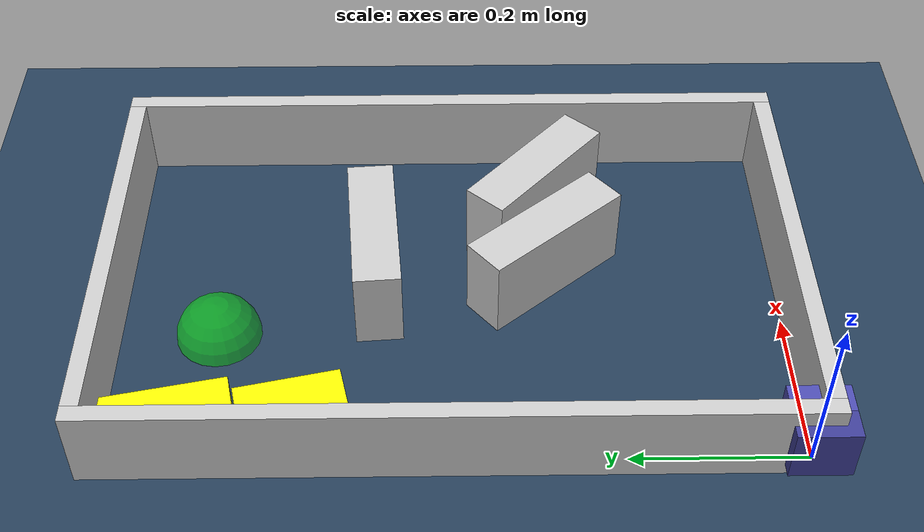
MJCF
<?xml version="1.0" ?>
<mujoco model="generated_environment">
  <option cone="elliptic" integrator="implicitfast" iterations="100" timestep="0.002"/>
  <default>
    <geom density="1"/>
  </default>
  <asset>
    <texture builtin="gradient" height="3072" rgb1="0.3 0.5 0.7" rgb2="0 0 0" type="skybox" width="512"/>
    <texture builtin="checker" height="300" mark="edge" markrgb="0.8 0.8 0.8" name="groundplane" rgb1="0.2 0.3 0.4" rgb2="0.1 0.2 0.3" type="2d" width="300"/>
    <material name="groundplane" reflectance="0.2" texrepeat="5 5" texture="groundplane" texuniform="true"/>
    <material name="robot" rgba="1.0 1.0 0.0 1.0"/>
  </asset>
  <include file="/home/dhruv/projects_dhruv/namo/namo_cpp/test_xml/little-car-modeling-package/assets/mjcf/little_car.xml"/>
  <worldbody>
    <light dir="0 0 -1" directional="true" pos="0 0 1.5"/>
    <geom condim="4" friction="0.5 0.005 0.001" material="groundplane" name="floor" size="0 0 0.05" type="plane"/>
    <body name="walls">
      <geom name="wall_1" condim="4" pos="-0.01 0.3875 0.05" friction="1 0.005 0.0001" rgba="0.800000011920929 0.800000011920929 0.800000011920929 1.0" size="0.01 0.40750000000000003 0.05" type="box"/>
      <geom name="wall_2" condim="4" pos="0.5 0.3875 0.05" friction="1 0.005 0.0001" rgba="0.800000011920929 0.800000011920929 0.800000011920929 1.0" size="0.01 0.40750000000000003 0.05" type="box"/>
      <geom name="wall_3" condim="4" pos="0.245 -0.01 0.05" friction="1 0.005 0.0001" rgba="0.800000011920929 0.800000011920929 0.800000011920929 1.0" size="0.245 0.01 0.05" type="box"/>
      <geom name="wall_4" condim="4" pos="0.245 0.785 0.05" friction="1 0.005 0.0001" rgba="0.800000011920929 0.800000011920929 0.800000011920929 1.0" size="0.245 0.01 0.05" type="box"/>
    </body>
    <body name="obstacle_1_movable">
      <geom name="obstacle_1_movable" condim="4" pos="0.03962839680957944 0.7037750968816706 0.02" quat="-0.10167508942999447 0 0 0.9948176597695694" friction="1 0.005 0.0001" rgba="1 1 0 1" size="0.035 0.075 0.02" type="box" mass="0.1"/>
      <joint type="free"/>
    </body>
    <body name="obstacle_2_movable">
      <geom name="obstacle_2_movable" condim="4" pos="0.04012025987975001 0.5629061704541461 0.025" quat="-0.10889789388262693 0 0 0.9940529405961879" friction="1 0.005 0.0001" rgba="1 1 0 1" size="0.0375 0.06 0.025" type="box" mass="0.1"/>
      <joint type="free"/>
    </body>
    <body name="wall_5">
      <geom name="wall_5" condim="4" pos="0.27400929018278647 0.47938160621733855 0.05" quat="0.6814645783924246 0 0 0.7318510971477976" friction="1 0.005 0.0001" rgba="0.800000011920929 0.800000011920929 0.800000011920929 1.0" size="0.0275 0.0975 0.05" type="box"/>
    </body>
    <body name="wall_6">
      <geom name="wall_6" condim="4" pos="0.2737363323940962 0.2779620475060865 0.05" quat="-0.3415120430287289 0 0 0.9398773986357708" friction="1 0.005 0.0001" rgba="0.800000011920929 0.800000011920929 0.800000011920929 1.0" size="0.0275 0.0975 0.05" type="box"/>
    </body>
    <body name="wall_7">
      <geom name="wall_7" condim="4" pos="0.3788127378063215 0.28537590609916014 0.05" quat="0.3569977871491862 0 0 0.9341052296024172" friction="1 0.005 0.0001" rgba="0.800000011920929 0.800000011920929 0.800000011920929 1.0" size="0.095 0.0275 0.05" type="box"/>
    </body>
    <site name="goal" type="sphere" size="0.05 0.05 0.05" rgba="0 1 0 0.5" pos="0.18865200000000001 0.661089 0.0"/>
  </worldbody>
</mujoco>

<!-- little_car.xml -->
<mujoco model="little_car">
  <compiler angle="radian" autolimits="true"/>
  <default>
    <geom condim="4"/>
    <joint damping="0.01" armature="0.0001"/>
  </default>
  <worldbody>
    <body name="car" pos="0 0 0.010000">
      <freejoint name="car_freejoint"/>
      <inertial pos="0.000000 0 0.037500" mass="0.350000"
                diaginertia="0.000266 0.000266 0.000286"/>
      <geom name="front_chassis_collision" type="box" pos="0.017500 0 0.037500"
            size="0.017500 0.035000 0.032500"
            rgba="0.3 0.3 0.7 1"/>
      <geom name="rear_chassis_collision" type="box" pos="-0.017500 0 0.037500"
            size="0.017500 0.035000 0.032500"
            rgba="0.25 0.25 0.6 1"/>
      <geom name="front_marker" type="box" pos="0.034000 0 0.050500"
            size="0.002000 0.015000 0.010000"
            rgba="1.0 0.2 0.2 1" contype="0" conaffinity="0"/>

      <body name="rear_support_body" pos="-0.030000 0.000000 0.002500">
        <joint name="rear_caster_joint" type="ball" damping="0.0001"/>
        <inertial pos="0 0 0" mass="0.025000"
                  diaginertia="0.000001 0.000001 0.000001"/>
        <geom name="rear_support" type="sphere"
              pos="0 0 0"
              size="0.002500"
              friction="0.000000 0.000000 0.000000"
              rgba="0.7 0.1 0.1 1"/>
      </body>

      <body name="front_support_body" pos="0.030000 0.000000 0.002500">
        <joint name="front_caster_joint" type="ball" damping="0.0001"/>
        <inertial pos="0 0 0" mass="0.025000"
                  diaginertia="0.000001 0.000001 0.000001"/>
        <geom name="front_support" type="sphere"
              pos="0 0 0"
              size="0.002500"
              friction="0.000000 0.000000 0.000000"
              rgba="0.1 0.7 0.1 1"/>
      </body>

      <body name="left_wheel" pos="0.000000 0.034000 0.015000">
        <inertial pos="0 0 0" mass="0.050000"
                  diaginertia="0.000003 0.000006 0.000003"/>
        <joint name="left_wheel_joint" type="hinge" axis="0 1 0"/>
        <geom name="left_wheel_collision" type="cylinder" size="0.015000 0.000500"
              euler="1.57079632679 0 0" rgba="0.1 0.1 0.1 1"/>
      </body>

      <body name="right_wheel" pos="0.000000 -0.034000 0.015000">
        <inertial pos="0 0 0" mass="0.050000"
                  diaginertia="0.000003 0.000006 0.000003"/>
        <joint name="right_wheel_joint" type="hinge" axis="0 1 0"/>
        <geom name="right_wheel_collision" type="cylinder" size="0.015000 0.000500"
              euler="1.57079632679 0 0" rgba="0.1 0.1 0.1 1"/>
      </body>
    </body>
  </worldbody>
  <contact>
    <exclude body1="car" body2="left_wheel"/>
    <exclude body1="car" body2="right_wheel"/>
  </contact>
  <actuator>
    <velocity name="left_wheel_drive" joint="left_wheel_joint"
              ctrlrange="-25.000000 25.000000"
              kv="0.750000" forcerange="-0.500000 0.500000"/>
    <velocity name="right_wheel_drive" joint="right_wheel_joint"
              ctrlrange="-25.000000 25.000000"
              kv="0.750000" forcerange="-0.500000 0.500000"/>
  </actuator>
</mujoco>
